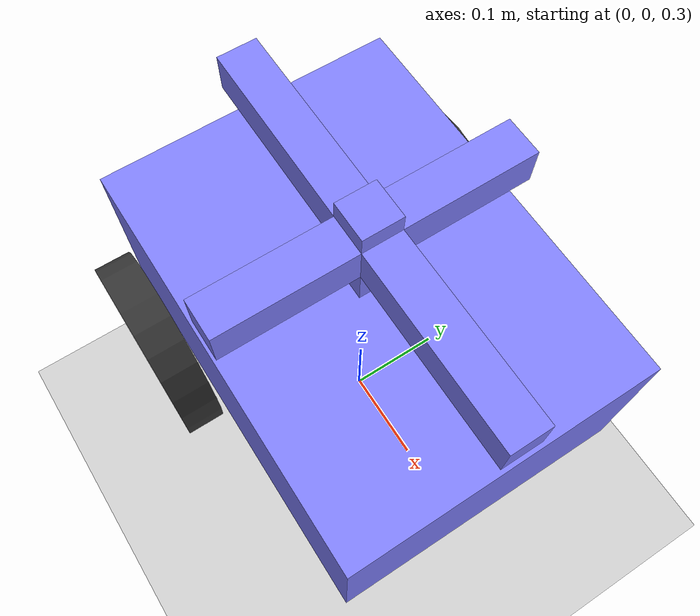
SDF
<?xml version="1.0" ?>
<sdf version="1.8">
  <world name="demo">
    <plugin
      filename="gz-sim-physics-system"
      name="gz::sim::systems::Physics">
    </plugin>
    <plugin
      filename="gz-sim-sensors-system"
      name="gz::sim::systems::Sensors">
      <render_engine>ogre2</render_engine>
    </plugin>
    <plugin
      filename="gz-sim-scene-broadcaster-system"
      name="gz::sim::systems::SceneBroadcaster">
    </plugin>
    <plugin
      filename="gz-sim-user-commands-system"
      name="gz::sim::systems::UserCommands">
    </plugin>
    <plugin
      filename="BasicSystem"
      name="ros_gz_example_gazebo::BasicSystem">
    </plugin>
    <plugin
      filename="FullSystem"
      name="ros_gz_example_gazebo::FullSystem">
    </plugin>

    <light name="sun" type="directional">
      <cast_shadows>true</cast_shadows>
      <pose>0 0 10 0 0 0</pose>
      <diffuse>0.8 0.8 0.8 1</diffuse>
      <specular>0.2 0.2 0.2 1</specular>
      <attenuation>
        <range>1000</range>
        <constant>0.9</constant>
        <linear>0.01</linear>
        <quadratic>0.001</quadratic>
      </attenuation>
      <direction>-0.5 0.1 -0.9</direction>
    </light>

    <model name="ground_plane">
      <static>true</static>
      <link name="link">
        <collision name="collision">
          <geometry>
            <plane>
              <normal>0 0 1</normal>
              <size>100 100</size>
            </plane>
          </geometry>
        </collision>
        <visual name="visual">
          <geometry>
            <plane>
              <normal>0 0 1</normal>
              <size>100 100</size>
            </plane>
          </geometry>
          <material>
            <ambient>0.8 0.8 0.8 1</ambient>
            <diffuse>0.8 0.8 0.8 1</diffuse>
            <specular>0.8 0.8 0.8 1</specular>
          </material>
        </visual>
      </link>
    </model>

    <model name="sam_bot">
      <self_collide>true</self_collide>
      <pose>0 0 0.35 0 0 0</pose>
      <include merge="true">
        <uri>package://ros_gz_example_description/models/sam_bot</uri>
      </include>

      <plugin
        filename="gz-sim-joint-state-publisher-system"
        name="gz::sim::systems::JointStatePublisher">
      </plugin>

      <plugin
        filename="gz-sim-pose-publisher-system"
        name="gz::sim::systems::PosePublisher">
        <publish_link_pose>true</publish_link_pose>
        <use_pose_vector_msg>true</use_pose_vector_msg>
        <static_publisher>true</static_publisher>
        <static_update_frequency>1</static_update_frequency>
      </plugin>

      <plugin
        filename="gz-sim-odometry-publisher-system"
        name="gz::sim::systems::OdometryPublisher">
        <odom_frame>sam_bot/odom</odom_frame>
        <robot_base_frame>sam_bot</robot_base_frame>
      </plugin>
    </model>

  </world>
</sdf>

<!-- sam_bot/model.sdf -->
<sdf version="1.8">
    <model name='diff_drive'>
      <link name='base'>
        <pose>0.0 0.0 0.15000000000000002 0 -0 0</pose>
        <inertial>
          <mass>1.14395</mass>
          <inertia>
            <ixx>0.26164</ixx>
            <ixy>0</ixy>
            <ixz>0</ixz>
            <iyy>0.3416519</iyy>
            <iyz>0</iyz>
            <izz>0.161014</izz>
          </inertia>
        </inertial>
        <visual name='visual_base'>
          <geometry>
            <box>
              <size>0.42 0.31 0.18</size>
            </box>
          </geometry>
          <material>
            <ambient>0.5 0.5 1.0 1</ambient>
            <diffuse>0.5 0.5 1.0 1</diffuse>
            <specular>0.0 0.0 1.0 1</specular>
          </material>
        </visual>
        <collision name='collision_base'>
          <geometry>
            <box>
              <size>0.42 0.31 0.18</size>
            </box>
          </geometry>
        </collision>
      </link>

      <link name='drivewhl_l'>
        <pose>-0.12 0.18 0.06 1.5707 0 0</pose>
        <inertial>
          <mass>0.5</mass>
          <inertia>
            <ixx>0.00145833</ixx>
            <ixy>0</ixy>
            <ixz>0</ixz>
            <iyy>0.00145833</iyy>
            <iyz>0</iyz>
            <izz>0.0025</izz>
          </inertia>
        </inertial>
        <visual name='visual_drivewhl_l'>
          <geometry>
            <cylinder>
              <radius>0.1</radius>
              <length>0.04</length>
            </cylinder>
          </geometry>
          <material>
            <ambient>0.2 0.2 0.2 1</ambient>
            <diffuse>0.2 0.2 0.2 1</diffuse>
            <specular>0.2 0.2 0.2 1</specular>
          </material>
        </visual>
        <collision name='collision_drivewhl_l'>
          <geometry>
            <cylinder>
              <radius>0.1</radius>
              <length>0.04</length>
            </cylinder>
          </geometry>
        </collision>
      </link>

      <link name='drivewhl_r'>
        <pose>-0.12 -0.18 0.06 1.5707 0 0</pose>
        <inertial>
          <mass>2</mass>
          <inertia>
            <ixx>0.00145833</ixx>
            <ixy>0</ixy>
            <ixz>0</ixz>
            <iyy>0.00145833</iyy>
            <iyz>0</iyz>
            <izz>0.0025</izz>
          </inertia>
        </inertial>
        <visual name='visual_drivewhl_r'>
          <geometry>
            <cylinder>
              <radius>0.1</radius>
              <length>0.04</length>
            </cylinder>
          </geometry>
          <material>
            <ambient>0.2 0.2 0.2 1</ambient>
            <diffuse>0.2 0.2 0.2 1</diffuse>
            <specular>0.2 0.2 0.2 1</specular>
          </material>
        </visual>
        <collision name='collision_drivewhl_r'>
          <geometry>
            <cylinder>
              <radius>0.1</radius>
              <length>0.04</length>
            </cylinder>
          </geometry>
        </collision>
      </link>

      <link name='caster'>
        <pose>0.14 0.0 0.06 0 -0 0</pose>
        <inertial>
          <mass>0.5</mass>
          <inertia>
            <ixx>0.1</ixx>
            <ixy>0</ixy>
            <ixz>0</ixz>
            <iyy>0.1</iyy>
            <iyz>0</iyz>
            <izz>0.1</izz>
          </inertia>
        </inertial>
        <visual name='visual_caster'>
          <geometry>
            <sphere>
              <radius>0.06</radius>
            </sphere>
          </geometry>
          <material>
            <ambient>0.2 0.2 0.2 1</ambient>
            <diffuse>0.2 0.2 0.2 1</diffuse>
            <specular>0.2 0.2 0.2 1</specular>
          </material>
        </visual>
        <collision name='collision_caster'>
          <geometry>
            <sphere>
              <radius>0.06</radius>
            </sphere>
          </geometry>
        </collision>
      </link>

      <joint name='drivewhl_l_joint' type='revolute'>
        <parent>base</parent>
        <child>drivewhl_l</child>
        <axis>
          <xyz>0 0 1</xyz>
          <limit>
            <lower>-1.79769e+308</lower>
            <upper>1.79769e+308</upper>
          </limit>
        </axis>
      </joint>

      <joint name='drivewhl_r_joint' type='revolute'>
        <parent>base</parent>
        <child>drivewhl_r</child>
        <axis>
          <xyz>0 0 1</xyz>
          <limit>
            <lower>-1.79769e+308</lower>
            <upper>1.79769e+308</upper>
          </limit>
        </axis>
      </joint>

      <joint name='caster_wheel' type='ball'>
        <parent>base</parent>
        <child>caster</child>
      </joint>

      <link name="rod">
        <pose>0.0 0.0 0.29 0 -0 0</pose>
        <inertial>
          <mass>0.1</mass>
          <inertia>
            <ixx>0.26164</ixx>
            <ixy>0</ixy>
            <ixz>0</ixz>
            <iyy>0.3416519</iyy>
            <iyz>0</iyz>
            <izz>0.161014</izz>
          </inertia>
        </inertial>
        <visual name='visual_rod'>
          <geometry>
            <box>
              <size>0.04 0.04 0.1</size>
            </box>
          </geometry>
          <material>
            <ambient>0.5 0.5 1.0 1</ambient>
            <diffuse>0.5 0.5 1.0 1</diffuse>
            <specular>0.0 0.0 1.0 1</specular>
          </material>
        </visual>
        <collision name='collision_rod'>
          <geometry>
            <box>
              <size>0.04 0.04 0.1</size>
            </box>
          </geometry>
        </collision>
      </link>

      <joint name="rod_joint" type="fixed">
        <parent>base</parent>
        <child>rod</child>
      </joint>

      <link name="hor_thing">
        <pose>0.0 0.0 0.3 0 -0 0</pose>
        <inertial>
          <mass>0.1</mass>
          <inertia>
            <ixx>0.26164</ixx>
            <ixy>0</ixy>
            <ixz>0</ixz>
            <iyy>0.3416519</iyy>
            <iyz>0</iyz>
            <izz>0.161014</izz>
          </inertia>
        </inertial>
        <visual name='visual_hor_thing'>
          <geometry>
            <box>
              <size>0.04 0.31 0.04</size>
            </box>
          </geometry>
          <material>
            <ambient>0.5 0.5 1.0 1</ambient>
            <diffuse>0.5 0.5 1.0 1</diffuse>
            <specular>0.0 0.0 1.0 1</specular>
          </material>
        </visual>
        <collision name='collision_hor_thing'>
          <geometry>
            <box>
              <size>0.04 0.31 0.04</size>
            </box>
          </geometry>
        </collision>
      </link>

      <joint name="hor_thing_joint" type="fixed">
        <parent>rod</parent>
        <child>hor_thing</child>
      </joint>

      <link name="ver_thing">
        <pose>0.0 0.0 0.3 0 -0 0</pose>
        <inertial>
          <mass>0.1</mass>
          <inertia>
            <ixx>0.26164</ixx>
            <ixy>0</ixy>
            <ixz>0</ixz>
            <iyy>0.3416519</iyy>
            <iyz>0</iyz>
            <izz>0.161014</izz>
          </inertia>
        </inertial>
        <visual name='visual_ver_thing'>
          <geometry>
            <box>
              <size>0.42 0.04 0.04</size>
            </box>
          </geometry>
          <material>
            <ambient>0.5 0.5 1.0 1</ambient>
            <diffuse>0.5 0.5 1.0 1</diffuse>
            <specular>0.0 0.0 1.0 1</specular>
          </material>
        </visual>
        <collision name='collision_ver_thing'>
          <geometry>
            <box>
              <size>0.42 0.04 0.04</size>
            </box>
          </geometry>
        </collision>
      </link>

      <joint name="ver_thing_joint" type="fixed">
        <parent>rod</parent>
        <child>ver_thing</child>
      </joint>

      <plugin
        filename="ignition-gazebo-diff-drive-system"
        name="ignition::gazebo::systems::DiffDrive">
        <left_joint>drivewhl_l_joint</left_joint>
        <right_joint>drivewhl_r_joint</right_joint>
        <wheel_separation>0.36</wheel_separation>
        <wheel_radius>0.1</wheel_radius>
        <odom_publish_frequency>1</odom_publish_frequency>
        <max_linear_acceleration>1000</max_linear_acceleration>
        <min_linear_acceleration>-1000</min_linear_acceleration>
        <max_angular_acceleration>2</max_angular_acceleration>
        <min_angular_acceleration>-2</min_angular_acceleration>
        <max_linear_velocity>1000</max_linear_velocity>
        <min_linear_velocity>-1000</min_linear_velocity>
        <max_angular_velocity>1000</max_angular_velocity>
        <min_angular_velocity>-1000</min_angular_velocity>
      </plugin>
    </model>
</sdf>
